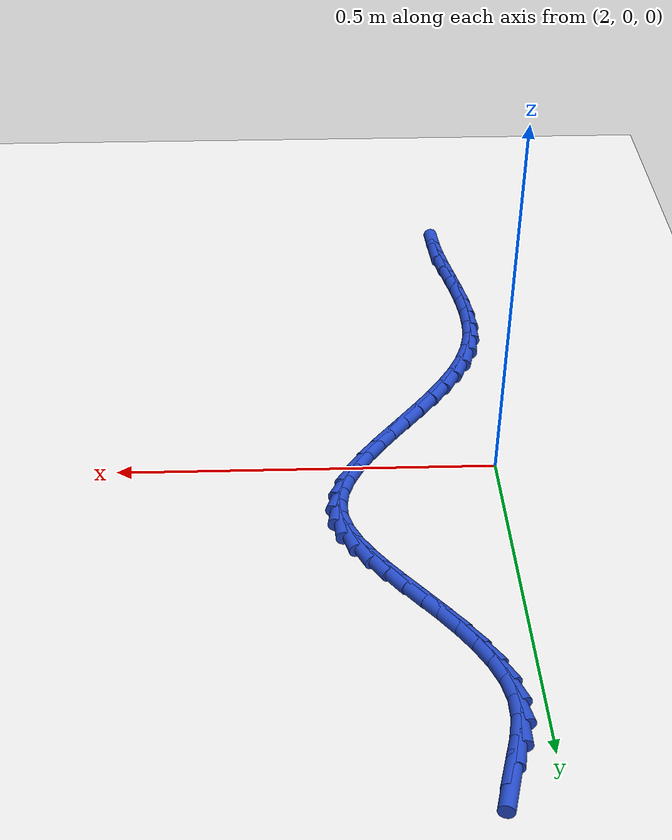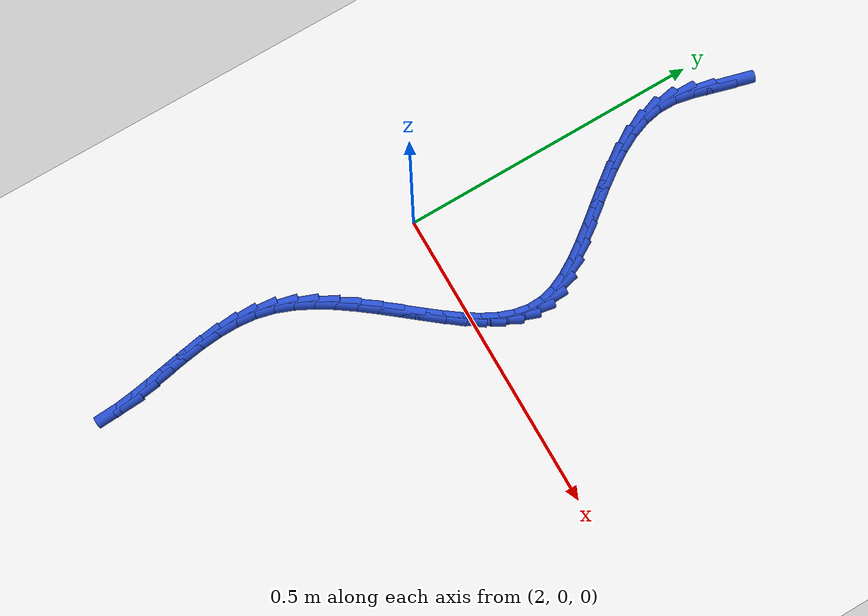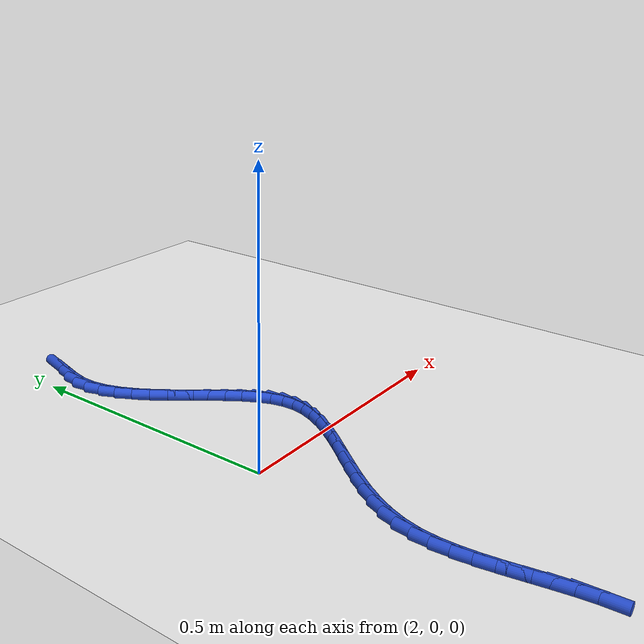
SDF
<sdf version="1.6">
 <world name="default">
  <model name="ground_plane">
   <static>1</static>
   <link name="link">
    <collision name="collision">
     <geometry><plane><normal>0 0 1</normal><size>100 100</size></plane></geometry>
     <surface><friction><ode><mu>100</mu><mu2>50</mu2></ode></friction></surface>
    </collision>
    <visual name="visual">
     <cast_shadows>0</cast_shadows>
     <geometry><plane><normal>0 0 1</normal><size>100 100</size></plane></geometry>
     <material>
      <script><uri>file://media/materials/scripts/gazebo.material</uri><name>Gazebo/WhiteGlow</name></script>
     </material>
    </visual>
   </link>
  </model>
  <model name="line">
   <link name="link_101">
    <pose>2.0573080663069803 0.5473118233598364 0.01 0 1.57 1.309125004153668</pose>
    <collision name="collision">
     <geometry><cylinder><radius>0.01</radius><length>0.08</length></cylinder></geometry>
    </collision>
    <visual name="visual">
     <material>
      <script><name>Gazebo/Blue</name><uri>file://media/materials/scripts/gazebo.material</uri></script>
     </material>
     <geometry><cylinder><radius>0.01</radius><length>0.08</length></cylinder></geometry>
    </visual>
   </link>
   <link name="link_102">
    <pose>2.0494269348557577 0.5178839661472084 0.01 0 1.57 1.292503681132336</pose>
    <collision name="collision">
     <geometry><cylinder><radius>0.01</radius><length>0.08</length></cylinder></geometry>
    </collision>
    <visual name="visual">
     <material>
      <script><name>Gazebo/Blue</name><uri>file://media/materials/scripts/gazebo.material</uri></script>
     </material>
     <geometry><cylinder><radius>0.01</radius><length>0.08</length></cylinder></geometry>
    </visual>
   </link>
   <link name="link_103">
    <pose>2.0407174521063296 0.487399967160079 0.01 0 1.57 1.3768247726626626</pose>
    <collision name="collision">
     <geometry><cylinder><radius>0.01</radius><length>0.08</length></cylinder></geometry>
    </collision>
    <visual name="visual">
     <material>
      <script><name>Gazebo/Blue</name><uri>file://media/materials/scripts/gazebo.material</uri></script>
     </material>
     <geometry><cylinder><radius>0.01</radius><length>0.08</length></cylinder></geometry>
    </visual>
   </link>
   <link name="link_104">
    <pose>2.0346939487199887 0.456736870494731 0.01 0 1.57 1.56101419187581</pose>
    <collision name="collision">
     <geometry><cylinder><radius>0.01</radius><length>0.08</length></cylinder></geometry>
    </collision>
    <visual name="visual">
     <material>
      <script><name>Gazebo/Blue</name><uri>file://media/materials/scripts/gazebo.material</uri></script>
     </material>
     <geometry><cylinder><radius>0.01</radius><length>0.08</length></cylinder></geometry>
    </visual>
   </link>
   <link name="link_105">
    <pose>2.0343998565788177 0.4266736212174946 0.01 0 1.57 -1.3827401884724684</pose>
    <collision name="collision">
     <geometry><cylinder><radius>0.01</radius><length>0.08</length></cylinder></geometry>
    </collision>
    <visual name="visual">
     <material>
      <script><name>Gazebo/Blue</name><uri>file://media/materials/scripts/gazebo.material</uri></script>
     </material>
     <geometry><cylinder><radius>0.01</radius><length>0.08</length></cylinder></geometry>
    </visual>
   </link>
   <link name="link_106">
    <pose>2.0399738076392757 0.3973840278611296 0.01 0 1.57 -1.2194309879584586</pose>
    <collision name="collision">
     <geometry><cylinder><radius>0.01</radius><length>0.08</length></cylinder></geometry>
    </collision>
    <visual name="visual">
     <material>
      <script><name>Gazebo/Blue</name><uri>file://media/materials/scripts/gazebo.material</uri></script>
     </material>
     <geometry><cylinder><radius>0.01</radius><length>0.08</length></cylinder></geometry>
    </visual>
   </link>
   <link name="link_107">
    <pose>2.0504478710734984 0.3688113765180816 0.01 0 1.57 -1.094401707478925</pose>
    <collision name="collision">
     <geometry><cylinder><radius>0.01</radius><length>0.08</length></cylinder></geometry>
    </collision>
    <visual name="visual">
     <material>
      <script><name>Gazebo/Blue</name><uri>file://media/materials/scripts/gazebo.material</uri></script>
     </material>
     <geometry><cylinder><radius>0.01</radius><length>0.08</length></cylinder></geometry>
    </visual>
   </link>
   <link name="link_108">
    <pose>2.0648519433906416 0.3408985006652015 0.01 0 1.57 -1.0044655192630259</pose>
    <collision name="collision">
     <geometry><cylinder><radius>0.01</radius><length>0.08</length></cylinder></geometry>
    </collision>
    <visual name="visual">
     <material>
      <script><name>Gazebo/Blue</name><uri>file://media/materials/scripts/gazebo.material</uri></script>
     </material>
     <geometry><cylinder><radius>0.01</radius><length>0.08</length></cylinder></geometry>
    </visual>
   </link>
   <link name="link_109">
    <pose>2.082215921099861 0.31358823377934114 0.01 0 1.57 -0.9447313371046033</pose>
    <collision name="collision">
     <geometry><cylinder><radius>0.01</radius><length>0.08</length></cylinder></geometry>
    </collision>
    <visual name="visual">
     <material>
      <script><name>Gazebo/Blue</name><uri>file://media/materials/scripts/gazebo.material</uri></script>
     </material>
     <geometry><cylinder><radius>0.01</radius><length>0.08</length></cylinder></geometry>
    </visual>
   </link>
   <link name="link_110">
    <pose>2.101569700710312 0.28682340933735134 0.01 0 1.57 -0.9112686737612892</pose>
    <collision name="collision">
     <geometry><cylinder><radius>0.01</radius><length>0.08</length></cylinder></geometry>
    </collision>
    <visual name="visual">
     <material>
      <script><name>Gazebo/Blue</name><uri>file://media/materials/scripts/gazebo.material</uri></script>
     </material>
     <geometry><cylinder><radius>0.01</radius><length>0.08</length></cylinder></geometry>
    </visual>
   </link>
   <link name="link_111">
    <pose>2.1219431787311525 0.2605468608160836 0.01 0 1.57 -0.9020594603028096</pose>
    <collision name="collision">
     <geometry><cylinder><radius>0.01</radius><length>0.08</length></cylinder></geometry>
    </collision>
    <visual name="visual">
     <material>
      <script><name>Gazebo/Blue</name><uri>file://media/materials/scripts/gazebo.material</uri></script>
     </material>
     <geometry><cylinder><radius>0.01</radius><length>0.08</length></cylinder></geometry>
    </visual>
   </link>
   <link name="link_112">
    <pose>2.142366251671536 0.23470142169238847 0.01 0 1.57 -0.9173464712766719</pose>
    <collision name="collision">
     <geometry><cylinder><radius>0.01</radius><length>0.08</length></cylinder></geometry>
    </collision>
    <visual name="visual">
     <material>
      <script><name>Gazebo/Blue</name><uri>file://media/materials/scripts/gazebo.material</uri></script>
     </material>
     <geometry><cylinder><radius>0.01</radius><length>0.08</length></cylinder></geometry>
    </visual>
   </link>
   <link name="link_113">
    <pose>2.161868816040619 0.20922992544311808 0.01 0 1.57 -0.9599730284166524</pose>
    <collision name="collision">
     <geometry><cylinder><radius>0.01</radius><length>0.08</length></cylinder></geometry>
    </collision>
    <visual name="visual">
     <material>
      <script><name>Gazebo/Blue</name><uri>file://media/materials/scripts/gazebo.material</uri></script>
     </material>
     <geometry><cylinder><radius>0.01</radius><length>0.08</length></cylinder></geometry>
    </visual>
   </link>
   <link name="link_114">
    <pose>2.1794807683475588 0.18407520554512324 0.01 0 1.57 -1.0358835006176055</pose>
    <collision name="collision">
     <geometry><cylinder><radius>0.01</radius><length>0.08</length></cylinder></geometry>
    </collision>
    <visual name="visual">
     <material>
      <script><name>Gazebo/Blue</name><uri>file://media/materials/scripts/gazebo.material</uri></script>
     </material>
     <geometry><cylinder><radius>0.01</radius><length>0.08</length></cylinder></geometry>
    </visual>
   </link>
   <link name="link_115">
    <pose>2.1942320051015094 0.15918009547525488 0.01 0 1.57 -1.1544030556154206</pose>
    <collision name="collision">
     <geometry><cylinder><radius>0.01</radius><length>0.08</length></cylinder></geometry>
    </collision>
    <visual name="visual">
     <material>
      <script><name>Gazebo/Blue</name><uri>file://media/materials/scripts/gazebo.material</uri></script>
     </material>
     <geometry><cylinder><radius>0.01</radius><length>0.08</length></cylinder></geometry>
    </visual>
   </link>
   <link name="link_116">
    <pose>2.205152422811627 0.1344874287103649 0.01 0 1.57 -1.3264830830890058</pose>
    <collision name="collision">
     <geometry><cylinder><radius>0.01</radius><length>0.08</length></cylinder></geometry>
    </collision>
    <visual name="visual">
     <material>
      <script><name>Gazebo/Blue</name><uri>file://media/materials/scripts/gazebo.material</uri></script>
     </material>
     <geometry><cylinder><radius>0.01</radius><length>0.08</length></cylinder></geometry>
    </visual>
   </link>
   <link name="link_117">
    <pose>2.211271917987068 0.10994003872730414 0.01 0 1.57 -1.5468823723854352</pose>
    <collision name="collision">
     <geometry><cylinder><radius>0.01</radius><length>0.08</length></cylinder></geometry>
    </collision>
    <visual name="visual">
     <material>
      <script><name>Gazebo/Blue</name><uri>file://media/materials/scripts/gazebo.material</uri></script>
     </material>
     <geometry><cylinder><radius>0.01</radius><length>0.08</length></cylinder></geometry>
    </visual>
   </link>
   <link name="link_118">
    <pose>2.2118569867057016 0.08547912460123154 0.01 0 1.57 1.385961195696783</pose>
    <collision name="collision">
     <geometry><cylinder><radius>0.01</radius><length>0.08</length></cylinder></geometry>
    </collision>
    <visual name="visual">
     <material>
      <script><name>Gazebo/Blue</name><uri>file://media/materials/scripts/gazebo.material</uri></script>
     </material>
     <geometry><cylinder><radius>0.01</radius><length>0.08</length></cylinder></geometry>
    </visual>
   </link>
   <link name="link_119">
    <pose>2.2072872857245134 0.061038195825673255 0.01 0 1.57 1.2179778056347328</pose>
    <collision name="collision">
     <geometry><cylinder><radius>0.01</radius><length>0.08</length></cylinder></geometry>
    </collision>
    <visual name="visual">
     <material>
      <script><name>Gazebo/Blue</name><uri>file://media/materials/scripts/gazebo.material</uri></script>
     </material>
     <geometry><cylinder><radius>0.01</radius><length>0.08</length></cylinder></geometry>
    </visual>
   </link>
   <link name="link_120">
    <pose>2.1982695470886124 0.03654850249695071 0.01 0 1.57 1.092453275171454</pose>
    <collision name="collision">
     <geometry><cylinder><radius>0.01</radius><length>0.08</length></cylinder></geometry>
    </collision>
    <visual name="visual">
     <material>
      <script><name>Gazebo/Blue</name><uri>file://media/materials/scripts/gazebo.material</uri></script>
     </material>
     <geometry><cylinder><radius>0.01</radius><length>0.08</length></cylinder></geometry>
    </visual>
   </link>
   <link name="link_121">
    <pose>2.185510546869034 0.011941294407258454 0.01 0 1.57 1.0036130536177899</pose>
    <collision name="collision">
     <geometry><cylinder><radius>0.01</radius><length>0.08</length></cylinder></geometry>
    </collision>
    <visual name="visual">
     <material>
      <script><name>Gazebo/Blue</name><uri>file://media/materials/scripts/gazebo.material</uri></script>
     </material>
     <geometry><cylinder><radius>0.01</radius><length>0.08</length></cylinder></geometry>
    </visual>
   </link>
   <link name="link_122">
    <pose>2.169717061136816 -0.012852178651208647 0.01 0 1.57 0.9445083623815974</pose>
    <collision name="collision">
     <geometry><cylinder><radius>0.01</radius><length>0.08</length></cylinder></geometry>
    </collision>
    <visual name="visual">
     <material>
      <script><name>Gazebo/Blue</name><uri>file://media/materials/scripts/gazebo.material</uri></script>
     </material>
     <geometry><cylinder><radius>0.01</radius><length>0.08</length></cylinder></geometry>
    </visual>
   </link>
   <link name="link_123">
    <pose>2.1515958659629915 -0.037900666886255666 0.01 0 1.57 0.9095529600803266</pose>
    <collision name="collision">
     <geometry><cylinder><radius>0.01</radius><length>0.08</length></cylinder></geometry>
    </collision>
    <visual name="visual">
     <material>
      <script><name>Gazebo/Blue</name><uri>file://media/materials/scripts/gazebo.material</uri></script>
     </material>
     <geometry><cylinder><radius>0.01</radius><length>0.08</length></cylinder></geometry>
    </visual>
   </link>
   <link name="link_124">
    <pose>2.1318537374185986 -0.0632729205056878 0.01 0 1.57 0.8950038198805758</pose>
    <collision name="collision">
     <geometry><cylinder><radius>0.01</radius><length>0.08</length></cylinder></geometry>
    </collision>
    <visual name="visual">
     <material>
      <script><name>Gazebo/Blue</name><uri>file://media/materials/scripts/gazebo.material</uri></script>
     </material>
     <geometry><cylinder><radius>0.01</radius><length>0.08</length></cylinder></geometry>
    </visual>
   </link>
   <link name="link_125">
    <pose>2.111197451574671 -0.08903768971731071 0.01 0 1.57 0.8987853221566986</pose>
    <collision name="collision">
     <geometry><cylinder><radius>0.01</radius><length>0.08</length></cylinder></geometry>
    </collision>
    <visual name="visual">
     <material>
      <script><name>Gazebo/Blue</name><uri>file://media/materials/scripts/gazebo.material</uri></script>
     </material>
     <geometry><cylinder><radius>0.01</radius><length>0.08</length></cylinder></geometry>
    </visual>
   </link>
   <link name="link_126">
    <pose>2.0903337845022474 -0.11526372472892832 0.01 0 1.57 0.9202232627931369</pose>
    <collision name="collision">
     <geometry><cylinder><radius>0.01</radius><length>0.08</length></cylinder></geometry>
    </collision>
    <visual name="visual">
     <material>
      <script><name>Gazebo/Blue</name><uri>file://media/materials/scripts/gazebo.material</uri></script>
     </material>
     <geometry><cylinder><radius>0.01</radius><length>0.08</length></cylinder></geometry>
    </visual>
   </link>
   <link name="link_127">
    <pose>2.0699695122723623 -0.14201977574834632 0.01 0 1.57 0.959831698475738</pose>
    <collision name="collision">
     <geometry><cylinder><radius>0.01</radius><length>0.08</length></cylinder></geometry>
    </collision>
    <visual name="visual">
     <material>
      <script><name>Gazebo/Blue</name><uri>file://media/materials/scripts/gazebo.material</uri></script>
     </material>
     <geometry><cylinder><radius>0.01</radius><length>0.08</length></cylinder></geometry>
    </visual>
   </link>
   <link name="link_128">
    <pose>2.0508114109560514 -0.1693745929833698 0.01 0 1.57 1.0191247449263046</pose>
    <collision name="collision">
     <geometry><cylinder><radius>0.01</radius><length>0.08</length></cylinder></geometry>
    </collision>
    <visual name="visual">
     <material>
      <script><name>Gazebo/Blue</name><uri>file://media/materials/scripts/gazebo.material</uri></script>
     </material>
     <geometry><cylinder><radius>0.01</radius><length>0.08</length></cylinder></geometry>
    </visual>
   </link>
   <link name="link_129">
    <pose>2.0335662566243506 -0.19739692664180392 0.01 0 1.57 1.100325365080593</pose>
    <collision name="collision">
     <geometry><cylinder><radius>0.01</radius><length>0.08</length></cylinder></geometry>
    </collision>
    <visual name="visual">
     <material>
      <script><name>Gazebo/Blue</name><uri>file://media/materials/scripts/gazebo.material</uri></script>
     </material>
     <geometry><cylinder><radius>0.01</radius><length>0.08</length></cylinder></geometry>
    </visual>
   </link>
   <link name="link_130">
    <pose>2.0189408253482966 -0.22615552693145383 0.01 0 1.57 1.2057366501246571</pose>
    <collision name="collision">
     <geometry><cylinder><radius>0.01</radius><length>0.08</length></cylinder></geometry>
    </collision>
    <visual name="visual">
     <material>
      <script><name>Gazebo/Blue</name><uri>file://media/materials/scripts/gazebo.material</uri></script>
     </material>
     <geometry><cylinder><radius>0.01</radius><length>0.08</length></cylinder></geometry>
    </visual>
   </link>
   <link name="link_131">
    <pose>2.007641893198924 -0.2557191440601246 0.01 0 1.57 1.3361049508918945</pose>
    <collision name="collision">
     <geometry><cylinder><radius>0.01</radius><length>0.08</length></cylinder></geometry>
    </collision>
    <visual name="visual">
     <material>
      <script><name>Gazebo/Blue</name><uri>file://media/materials/scripts/gazebo.material</uri></script>
     </material>
     <geometry><cylinder><radius>0.01</radius><length>0.08</length></cylinder></geometry>
    </visual>
   </link>
   <link name="link_132">
    <pose>2.0003649766557556 -0.28615408886011634 0.01 0 1.57 1.4706335877125238</pose>
    <collision name="collision">
     <geometry><cylinder><radius>0.01</radius><length>0.08</length></cylinder></geometry>
    </collision>
    <visual name="visual">
     <material>
      <script><name>Gazebo/Blue</name><uri>file://media/materials/scripts/gazebo.material</uri></script>
     </material>
     <geometry><cylinder><radius>0.01</radius><length>0.08</length></cylinder></geometry>
    </visual>
   </link>
   <link name="link_133">
    <pose>1.9972247093246434 -0.31740082466277675 0.01 0 1.57 -1.5625851055481357</pose>
    <collision name="collision">
     <geometry><cylinder><radius>0.01</radius><length>0.08</length></cylinder></geometry>
    </collision>
    <visual name="visual">
     <material>
      <script><name>Gazebo/Blue</name><uri>file://media/materials/scripts/gazebo.material</uri></script>
     </material>
     <geometry><cylinder><radius>0.01</radius><length>0.08</length></cylinder></geometry>
    </visual>
   </link>
   <link name="link_134">
    <pose>1.9974859542843575 -0.349215713146504 0.01 0 1.57 -1.4819985186714788</pose>
    <collision name="collision">
     <geometry><cylinder><radius>0.01</radius><length>0.08</length></cylinder></geometry>
    </collision>
    <visual name="visual">
     <material>
      <script><name>Gazebo/Blue</name><uri>file://media/materials/scripts/gazebo.material</uri></script>
     </material>
     <geometry><cylinder><radius>0.01</radius><length>0.08</length></cylinder></geometry>
    </visual>
   </link>
   <link name="link_135">
    <pose>2.0003460858494675 -0.38134049463881414 0.01 0 1.57 -1.4270795769167612</pose>
    <collision name="collision">
     <geometry><cylinder><radius>0.01</radius><length>0.08</length></cylinder></geometry>
    </collision>
    <visual name="visual">
     <material>
      <script><name>Gazebo/Blue</name><uri>file://media/materials/scripts/gazebo.material</uri></script>
     </material>
     <geometry><cylinder><radius>0.01</radius><length>0.08</length></cylinder></geometry>
    </visual>
   </link>
   <link name="link_136">
    <pose>2.0050024783345424 -0.41351690946722286 0.01 0 1.57 -1.3958723494720127</pose>
    <collision name="collision">
     <geometry><cylinder><radius>0.01</radius><length>0.08</length></cylinder></geometry>
    </collision>
    <visual name="visual">
     <material>
      <script><name>Gazebo/Blue</name><uri>file://media/materials/scripts/gazebo.material</uri></script>
     </material>
     <geometry><cylinder><radius>0.01</radius><length>0.08</length></cylinder></geometry>
    </visual>
   </link>
   <link name="link_137">
    <pose>2.010652506054151 -0.4454866979592461 0.01 0 1.57 -1.387476955310004</pose>
    <collision name="collision">
     <geometry><cylinder><radius>0.01</radius><length>0.08</length></cylinder></geometry>
    </collision>
    <visual name="visual">
     <material>
      <script><name>Gazebo/Blue</name><uri>file://media/materials/scripts/gazebo.material</uri></script>
     </material>
     <geometry><cylinder><radius>0.01</radius><length>0.08</length></cylinder></geometry>
    </visual>
   </link>
   <link name="link_138">
    <pose>2.016493543322863 -0.47699160044239963 0.01 0 1.57 -1.4025159720040248</pose>
    <collision name="collision">
     <geometry><cylinder><radius>0.01</radius><length>0.08</length></cylinder></geometry>
    </collision>
    <visual name="visual">
     <material>
      <script><name>Gazebo/Blue</name><uri>file://media/materials/scripts/gazebo.material</uri></script>
     </material>
     <geometry><cylinder><radius>0.01</radius><length>0.08</length></cylinder></geometry>
    </visual>
   </link>
   <link name="link_139">
    <pose>2.021722964455246 -0.5077733572441993 0.01 0 1.57 -1.4434643407200543</pose>
    <collision name="collision">
     <geometry><cylinder><radius>0.01</radius><length>0.08</length></cylinder></geometry>
    </collision>
    <visual name="visual">
     <material>
      <script><name>Gazebo/Blue</name><uri>file://media/materials/scripts/gazebo.material</uri></script>
     </material>
     <geometry><cylinder><radius>0.01</radius><length>0.08</length></cylinder></geometry>
    </visual>
   </link>
   <link name="link_140">
    <pose>2.025538143765871 -0.5375737086921618 0.01 0 1.57 -1.5148926832715983</pose>
    <collision name="collision">
     <geometry><cylinder><radius>0.01</radius><length>0.08</length></cylinder></geometry>
    </collision>
    <visual name="visual">
     <material>
      <script><name>Gazebo/Blue</name><uri>file://media/materials/scripts/gazebo.material</uri></script>
     </material>
     <geometry><cylinder><radius>0.01</radius><length>0.08</length></cylinder></geometry>
    </visual>
   </link>
  </model>
 </world>
</sdf>
